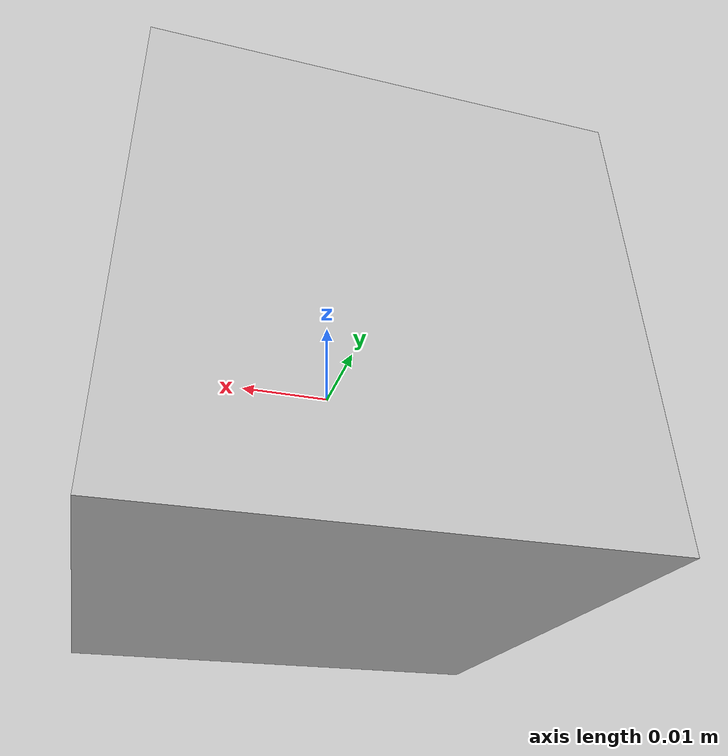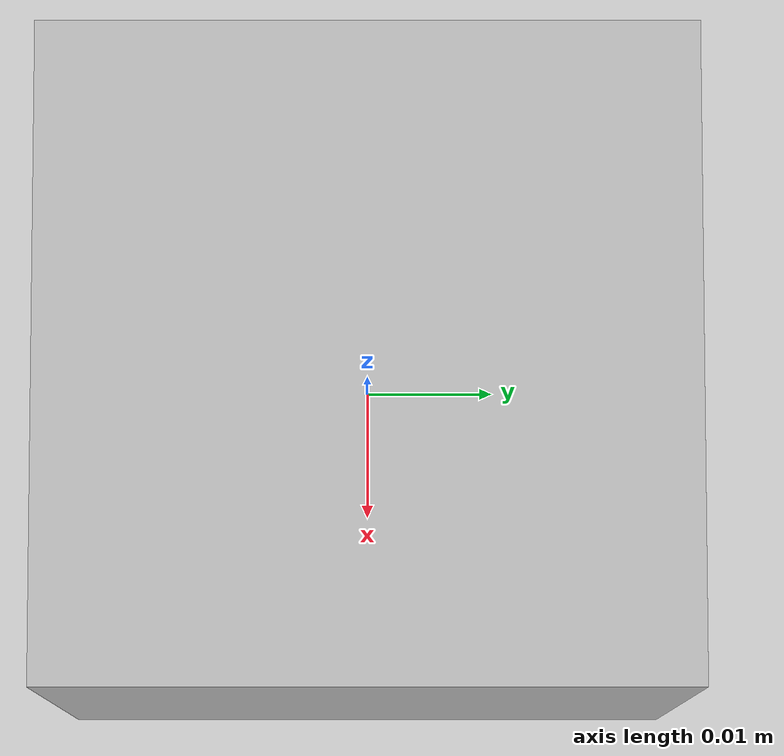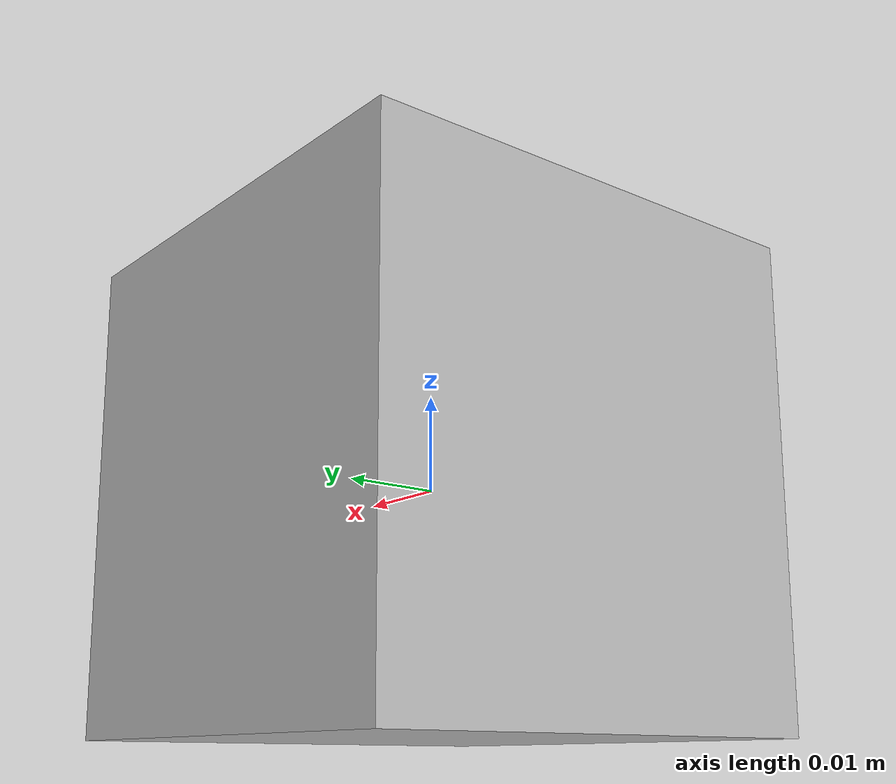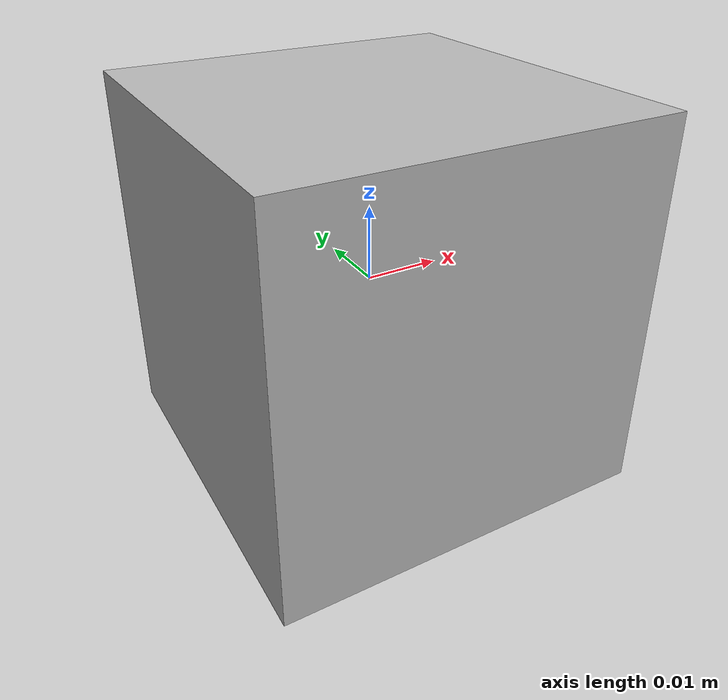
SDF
<?xml version='1.0'?>
<sdf version="1.6">
  <model name="simple_mid360">
    <link name="livox_link">
      <pose>0 0 0 0 0 0</pose>
      <inertial>
        <mass>0.1</mass>
        <inertia>
          <ixx>0.0001</ixx>
          <ixy>0.0</ixy>
          <ixz>0.0</ixz>
          <iyy>0.0001</iyy>
          <iyz>0.0</iyz>
          <izz>0.0001</izz>
        </inertia>
      </inertial>

      <collision name="lidar_collision">
        <geometry>
          <box>
            <size>0.05 0.05 0.05</size>
          </box>
        </geometry>
      </collision>

      <visual name="lidar_visual">
        <geometry>
          <box>
            <size>0.05 0.05 0.05</size>
          </box>
        </geometry>
      </visual>

      <sensor type="ray" name="laser_livox">
        <pose>0 0 0.05 0 0 0</pose>
        <visualize>false</visualize>
        <always_on>true</always_on>
        <update_rate>10</update_rate>

        <plugin name="gazebo_ros_laser_controller" filename="liblivox_laser_simulation.so">
          <ray>
            <scan>
              <horizontal>
                <samples>100</samples>
                <resolution>1</resolution>
                <min_angle>-3.1415926535897931</min_angle>
                <max_angle>3.1415926535897931</max_angle>
              </horizontal>
              <vertical>
                <samples>50</samples>
                <resolution>1</resolution>
                <min_angle>-3.1415926535897931</min_angle>
                <max_angle>3.1415926535897931</max_angle>
              </vertical>
            </scan>
            <range>
              <min>0.1</min>
              <max>40</max>
              <resolution>1</resolution>
            </range>
            <noise>
              <type>gaussian</type>
              <mean>0.0</mean>
              <stddev>0.0</stddev>
            </noise>
          </ray>

          <visualize>true</visualize>
          <samples>20000</samples>
          <downsample>1</downsample>
          <csv_file_name>mid360-real-centr.csv</csv_file_name>
          <publish_pointcloud_type>3</publish_pointcloud_type>
          <ros_topic>/livox/lidar</ros_topic>
          <frameName>livox_link</frameName>
        </plugin>
      </sensor>
    </link>

    ---

    <link name="imu_link">
      <inertial>
        <mass>0.01</mass>
        <inertia>
          <ixx>1e-6</ixx>
          <ixy>0.0</ixy>
          <ixz>0.0</ixz>
          <iyy>1e-6</iyy>
          <iyz>0.0</iyz>
          <izz>1e-6</izz>
        </inertia>
      </inertial>

      <visual name="imu_visual">
        <geometry>
          <box>
            <size>0.01 0.01 0.01</size>
          </box>
        </geometry>
        <material>
          <ambient>0.8 0.2 0.2 1</ambient>
          <diffuse>0.8 0.3 0.3 1</diffuse>
        </material>
      </visual>

      <sensor name="imu_sensor" type="imu">
        <pose>0 0 0 0 0 0</pose>
        <always_on>true</always_on>
        <update_rate>200</update_rate>
        <visualize>true</visualize>
        <topic>__default_topic__</topic>

        <plugin filename="libgazebo_ros_imu_sensor.so" name="imu_plugin">
          <topicName>/livox/imu</topicName>
          <bodyName>imu_link</bodyName>
          <updateRateHZ>200.0</updateRateHZ>
          <gaussianNoise>0.0</gaussianNoise>
          <xyzOffset>0 0 0</xyzOffset>
          <rpyOffset>0 0 0</rpyOffset>
          <frameName>imu_link</frameName>
        </plugin>
      </sensor>
    </link>

    ---

    <joint name="livox_imu_joint" type="fixed">
      <parent>livox_link</parent>
      <child>imu_link</child>
      <pose>0.011 0.02329 -0.04412 0 0 0</pose>
    </joint>

  </model>
</sdf>
